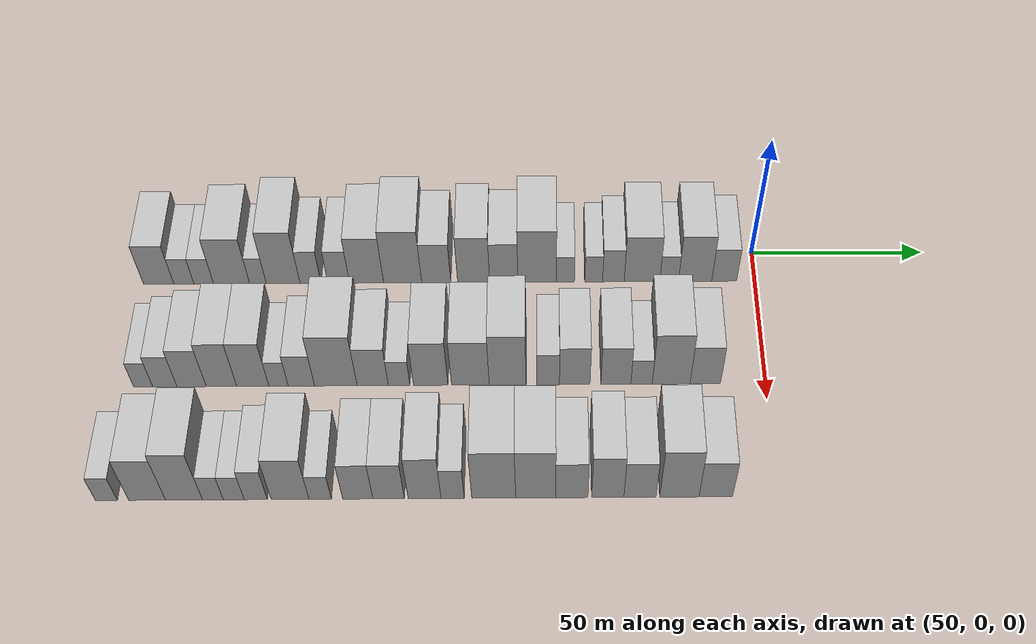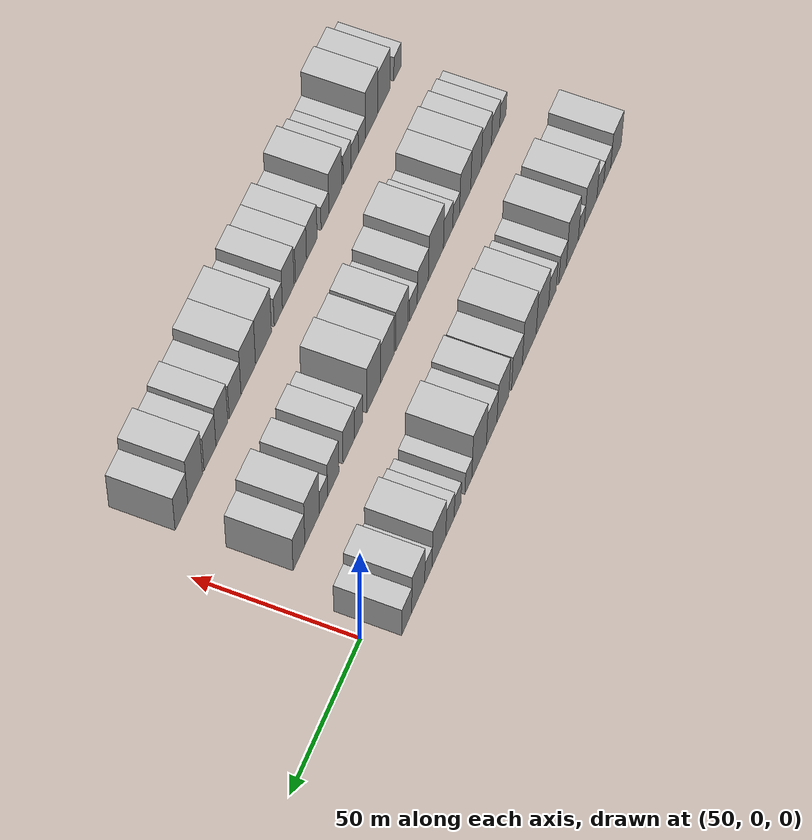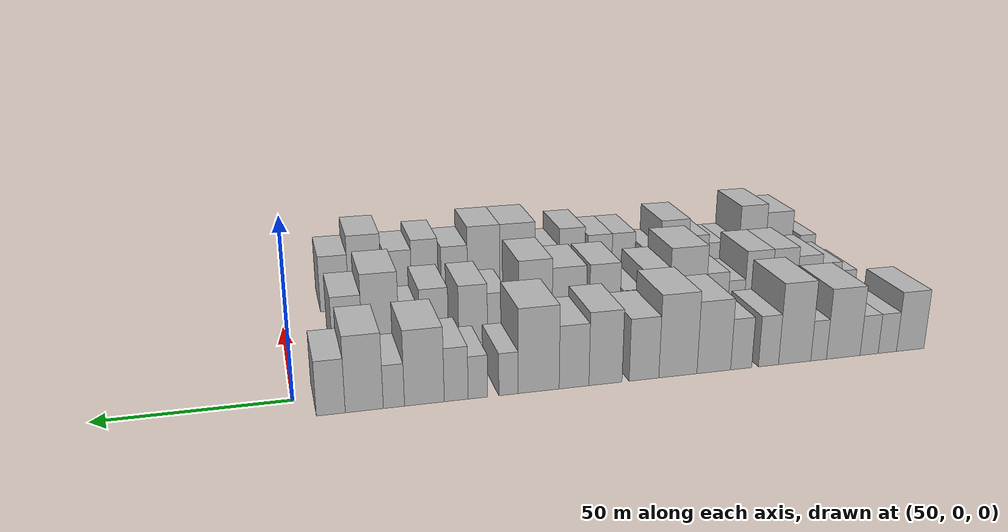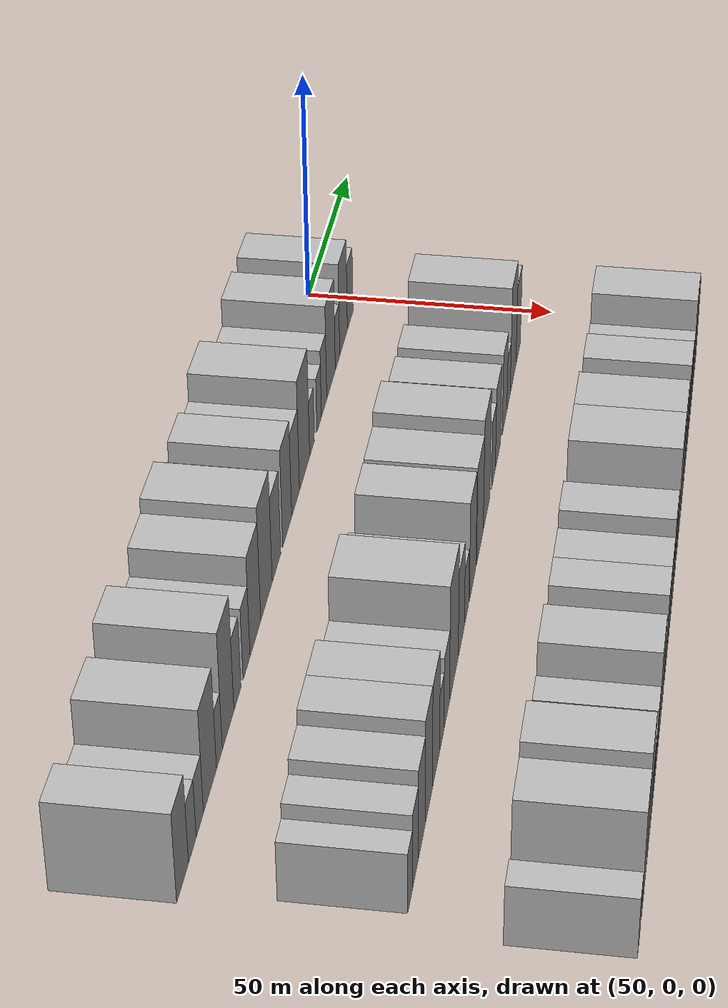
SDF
<sdf version="1.6">
 <world name="default">
  <model name="building_22">
   <static>1</static>
   <pose>50.0000 -173.2719 0 0.000000 0.000000 0.000000</pose>
   <link name="link">
    <pose>0 0 9.00 0 0 0</pose>
    <collision name="collision"><geometry><box><size>20.0000 8.8156 18.0000</size></box></geometry></collision>
    <visual name="visual">
     <cast_shadows>0</cast_shadows>
     <geometry><box><size>20.0000 8.8156 18.0000</size></box></geometry>
     <material>
      <script>
       <uri>model://HANNAS_wall/materials/scripts</uri>
       <uri>model://HANNAS_wall/materials/textures</uri>
       <name>vrc/HANNAS_wall</name>
      </script>
     </material>
    </visual>
   </link>
  </model>
  <model name="building_23">
   <static>1</static>
   <pose>50.0000 -165.9495 0 0.000000 0.000000 0.000000</pose>
   <link name="link">
    <pose>0 0 6.00 0 0 0</pose>
    <collision name="collision"><geometry><box><size>20.0000 5.8291 12.0000</size></box></geometry></collision>
    <visual name="visual">
     <cast_shadows>0</cast_shadows>
     <geometry><box><size>20.0000 5.8291 12.0000</size></box></geometry>
     <material>
      <script>
       <uri>model://HANNAS_wall/materials/scripts</uri>
       <uri>model://HANNAS_wall/materials/textures</uri>
       <name>vrc/HANNAS_wall</name>
      </script>
     </material>
    </visual>
   </link>
  </model>
  <model name="building_24">
   <static>1</static>
   <pose>50.0000 -160.1838 0 0.000000 0.000000 0.000000</pose>
   <link name="link">
    <pose>0 0 6.00 0 0 0</pose>
    <collision name="collision"><geometry><box><size>20.0000 5.7024 12.0000</size></box></geometry></collision>
    <visual name="visual">
     <cast_shadows>0</cast_shadows>
     <geometry><box><size>20.0000 5.7024 12.0000</size></box></geometry>
     <material>
      <script>
       <uri>model://HANNAS_wall/materials/scripts</uri>
       <uri>model://HANNAS_wall/materials/textures</uri>
       <name>vrc/HANNAS_wall</name>
      </script>
     </material>
    </visual>
   </link>
  </model>
  <model name="building_25">
   <static>1</static>
   <pose>50.0000 -152.0896 0 0.000000 0.000000 0.000000</pose>
   <link name="link">
    <pose>0 0 10.50 0 0 0</pose>
    <collision name="collision"><geometry><box><size>20.0000 10.4859 21.0000</size></box></geometry></collision>
    <visual name="visual">
     <cast_shadows>0</cast_shadows>
     <geometry><box><size>20.0000 10.4859 21.0000</size></box></geometry>
     <material>
      <script>
       <uri>model://HANNAS_wall/materials/scripts</uri>
       <uri>model://HANNAS_wall/materials/textures</uri>
       <name>vrc/HANNAS_wall</name>
      </script>
     </material>
    </visual>
   </link>
  </model>
  <model name="building_26">
   <static>1</static>
   <pose>50.0000 -144.4280 0 0.000000 0.000000 0.000000</pose>
   <link name="link">
    <pose>0 0 6.00 0 0 0</pose>
    <collision name="collision"><geometry><box><size>20.0000 4.8373 12.0000</size></box></geometry></collision>
    <visual name="visual">
     <cast_shadows>0</cast_shadows>
     <geometry><box><size>20.0000 4.8373 12.0000</size></box></geometry>
     <material>
      <script>
       <uri>model://HANNAS_wall/materials/scripts</uri>
       <uri>model://HANNAS_wall/materials/textures</uri>
       <name>vrc/HANNAS_wall</name>
      </script>
     </material>
    </visual>
   </link>
  </model>
  <model name="building_27">
   <static>1</static>
   <pose>50.0000 -137.0855 0 0.000000 0.000000 0.000000</pose>
   <link name="link">
    <pose>0 0 12.00 0 0 0</pose>
    <collision name="collision"><geometry><box><size>20.0000 9.8476 24.0000</size></box></geometry></collision>
    <visual name="visual">
     <cast_shadows>0</cast_shadows>
     <geometry><box><size>20.0000 9.8476 24.0000</size></box></geometry>
     <material>
      <script>
       <uri>model://HANNAS_wall/materials/scripts</uri>
       <uri>model://HANNAS_wall/materials/textures</uri>
       <name>vrc/HANNAS_wall</name>
      </script>
     </material>
    </visual>
   </link>
  </model>
  <model name="building_28">
   <static>1</static>
   <pose>50.0000 -129.1241 0 0.000000 0.000000 0.000000</pose>
   <link name="link">
    <pose>0 0 7.50 0 0 0</pose>
    <collision name="collision"><geometry><box><size>20.0000 6.0752 15.0000</size></box></geometry></collision>
    <visual name="visual">
     <cast_shadows>0</cast_shadows>
     <geometry><box><size>20.0000 6.0752 15.0000</size></box></geometry>
     <material>
      <script>
       <uri>model://HANNAS_wall/materials/scripts</uri>
       <uri>model://HANNAS_wall/materials/textures</uri>
       <name>vrc/HANNAS_wall</name>
      </script>
     </material>
    </visual>
   </link>
  </model>
  <model name="building_29">
   <static>1</static>
   <pose>50.0000 -120.9508 0 0.000000 0.000000 0.000000</pose>
   <link name="link">
    <pose>0 0 7.50 0 0 0</pose>
    <collision name="collision"><geometry><box><size>20.0000 6.2715 15.0000</size></box></geometry></collision>
    <visual name="visual">
     <cast_shadows>0</cast_shadows>
     <geometry><box><size>20.0000 6.2715 15.0000</size></box></geometry>
     <material>
      <script>
       <uri>model://HANNAS_wall/materials/scripts</uri>
       <uri>model://HANNAS_wall/materials/textures</uri>
       <name>vrc/HANNAS_wall</name>
      </script>
     </material>
    </visual>
   </link>
  </model>
  <model name="building_30">
   <static>1</static>
   <pose>50.0000 -112.8564 0 0.000000 0.000000 0.000000</pose>
   <link name="link">
    <pose>0 0 10.50 0 0 0</pose>
    <collision name="collision"><geometry><box><size>20.0000 9.9175 21.0000</size></box></geometry></collision>
    <visual name="visual">
     <cast_shadows>0</cast_shadows>
     <geometry><box><size>20.0000 9.9175 21.0000</size></box></geometry>
     <material>
      <script>
       <uri>model://HANNAS_wall/materials/scripts</uri>
       <uri>model://HANNAS_wall/materials/textures</uri>
       <name>vrc/HANNAS_wall</name>
      </script>
     </material>
    </visual>
   </link>
  </model>
  <model name="building_31">
   <static>1</static>
   <pose>50.0000 -102.3716 0 0.000000 0.000000 0.000000</pose>
   <link name="link">
    <pose>0 0 12.00 0 0 0</pose>
    <collision name="collision"><geometry><box><size>20.0000 11.0521 24.0000</size></box></geometry></collision>
    <visual name="visual">
     <cast_shadows>0</cast_shadows>
     <geometry><box><size>20.0000 11.0521 24.0000</size></box></geometry>
     <material>
      <script>
       <uri>model://HANNAS_wall/materials/scripts</uri>
       <uri>model://HANNAS_wall/materials/textures</uri>
       <name>vrc/HANNAS_wall</name>
      </script>
     </material>
    </visual>
   </link>
  </model>
  <model name="building_32">
   <static>1</static>
   <pose>50.0000 -92.6027 0 0.000000 0.000000 0.000000</pose>
   <link name="link">
    <pose>0 0 9.00 0 0 0</pose>
    <collision name="collision"><geometry><box><size>20.0000 8.4857 18.0000</size></box></geometry></collision>
    <visual name="visual">
     <cast_shadows>0</cast_shadows>
     <geometry><box><size>20.0000 8.4857 18.0000</size></box></geometry>
     <material>
      <script>
       <uri>model://HANNAS_wall/materials/scripts</uri>
       <uri>model://HANNAS_wall/materials/textures</uri>
       <name>vrc/HANNAS_wall</name>
      </script>
     </material>
    </visual>
   </link>
  </model>
  <model name="building_33">
   <static>1</static>
   <pose>50.0000 -81.7092 0 0.000000 0.000000 0.000000</pose>
   <link name="link">
    <pose>0 0 10.50 0 0 0</pose>
    <collision name="collision"><geometry><box><size>20.0000 9.3013 21.0000</size></box></geometry></collision>
    <visual name="visual">
     <cast_shadows>0</cast_shadows>
     <geometry><box><size>20.0000 9.3013 21.0000</size></box></geometry>
     <material>
      <script>
       <uri>model://HANNAS_wall/materials/scripts</uri>
       <uri>model://HANNAS_wall/materials/textures</uri>
       <name>vrc/HANNAS_wall</name>
      </script>
     </material>
    </visual>
   </link>
  </model>
  <model name="building_34">
   <static>1</static>
   <pose>50.0000 -72.9314 0 0.000000 0.000000 0.000000</pose>
   <link name="link">
    <pose>0 0 9.00 0 0 0</pose>
    <collision name="collision"><geometry><box><size>20.0000 8.2544 18.0000</size></box></geometry></collision>
    <visual name="visual">
     <cast_shadows>0</cast_shadows>
     <geometry><box><size>20.0000 8.2544 18.0000</size></box></geometry>
     <material>
      <script>
       <uri>model://HANNAS_wall/materials/scripts</uri>
       <uri>model://HANNAS_wall/materials/textures</uri>
       <name>vrc/HANNAS_wall</name>
      </script>
     </material>
    </visual>
   </link>
  </model>
  <model name="building_35">
   <static>1</static>
   <pose>50.0000 -63.2243 0 0.000000 0.000000 0.000000</pose>
   <link name="link">
    <pose>0 0 12.00 0 0 0</pose>
    <collision name="collision"><geometry><box><size>20.0000 11.1598 24.0000</size></box></geometry></collision>
    <visual name="visual">
     <cast_shadows>0</cast_shadows>
     <geometry><box><size>20.0000 11.1598 24.0000</size></box></geometry>
     <material>
      <script>
       <uri>model://HANNAS_wall/materials/scripts</uri>
       <uri>model://HANNAS_wall/materials/textures</uri>
       <name>vrc/HANNAS_wall</name>
      </script>
     </material>
    </visual>
   </link>
  </model>
  <model name="building_36">
   <static>1</static>
   <pose>50.0000 -55.0283 0 0.000000 0.000000 0.000000</pose>
   <link name="link">
    <pose>0 0 6.00 0 0 0</pose>
    <collision name="collision"><geometry><box><size>20.0000 5.2321 12.0000</size></box></geometry></collision>
    <visual name="visual">
     <cast_shadows>0</cast_shadows>
     <geometry><box><size>20.0000 5.2321 12.0000</size></box></geometry>
     <material>
      <script>
       <uri>model://HANNAS_wall/materials/scripts</uri>
       <uri>model://HANNAS_wall/materials/textures</uri>
       <name>vrc/HANNAS_wall</name>
      </script>
     </material>
    </visual>
   </link>
  </model>
  <model name="building_37">
   <static>1</static>
   <pose>50.0000 -46.8192 0 0.000000 0.000000 0.000000</pose>
   <link name="link">
    <pose>0 0 6.00 0 0 0</pose>
    <collision name="collision"><geometry><box><size>20.0000 5.1861 12.0000</size></box></geometry></collision>
    <visual name="visual">
     <cast_shadows>0</cast_shadows>
     <geometry><box><size>20.0000 5.1861 12.0000</size></box></geometry>
     <material>
      <script>
       <uri>model://HANNAS_wall/materials/scripts</uri>
       <uri>model://HANNAS_wall/materials/textures</uri>
       <name>vrc/HANNAS_wall</name>
      </script>
     </material>
    </visual>
   </link>
  </model>
  <model name="building_38">
   <static>1</static>
   <pose>50.0000 -41.0748 0 0.000000 0.000000 0.000000</pose>
   <link name="link">
    <pose>0 0 7.50 0 0 0</pose>
    <collision name="collision"><geometry><box><size>20.0000 6.3028 15.0000</size></box></geometry></collision>
    <visual name="visual">
     <cast_shadows>0</cast_shadows>
     <geometry><box><size>20.0000 6.3028 15.0000</size></box></geometry>
     <material>
      <script>
       <uri>model://HANNAS_wall/materials/scripts</uri>
       <uri>model://HANNAS_wall/materials/textures</uri>
       <name>vrc/HANNAS_wall</name>
      </script>
     </material>
    </visual>
   </link>
  </model>
  <model name="building_39">
   <static>1</static>
   <pose>50.0000 -32.7464 0 0.000000 0.000000 0.000000</pose>
   <link name="link">
    <pose>0 0 10.50 0 0 0</pose>
    <collision name="collision"><geometry><box><size>20.0000 10.3540 21.0000</size></box></geometry></collision>
    <visual name="visual">
     <cast_shadows>0</cast_shadows>
     <geometry><box><size>20.0000 10.3540 21.0000</size></box></geometry>
     <material>
      <script>
       <uri>model://HANNAS_wall/materials/scripts</uri>
       <uri>model://HANNAS_wall/materials/textures</uri>
       <name>vrc/HANNAS_wall</name>
      </script>
     </material>
    </visual>
   </link>
  </model>
  <model name="building_40">
   <static>1</static>
   <pose>50.0000 -24.8430 0 0.000000 0.000000 0.000000</pose>
   <link name="link">
    <pose>0 0 6.00 0 0 0</pose>
    <collision name="collision"><geometry><box><size>20.0000 5.4528 12.0000</size></box></geometry></collision>
    <visual name="visual">
     <cast_shadows>0</cast_shadows>
     <geometry><box><size>20.0000 5.4528 12.0000</size></box></geometry>
     <material>
      <script>
       <uri>model://HANNAS_wall/materials/scripts</uri>
       <uri>model://HANNAS_wall/materials/textures</uri>
       <name>vrc/HANNAS_wall</name>
      </script>
     </material>
    </visual>
   </link>
  </model>
  <model name="building_41">
   <static>1</static>
   <pose>50.0000 -17.2844 0 0.000000 0.000000 0.000000</pose>
   <link name="link">
    <pose>0 0 10.50 0 0 0</pose>
    <collision name="collision"><geometry><box><size>20.0000 9.6644 21.0000</size></box></geometry></collision>
    <visual name="visual">
     <cast_shadows>0</cast_shadows>
     <geometry><box><size>20.0000 9.6644 21.0000</size></box></geometry>
     <material>
      <script>
       <uri>model://HANNAS_wall/materials/scripts</uri>
       <uri>model://HANNAS_wall/materials/textures</uri>
       <name>vrc/HANNAS_wall</name>
      </script>
     </material>
    </visual>
   </link>
  </model>
  <model name="building_42">
   <static>1</static>
   <pose>50.0000 -8.8201 0 0.000000 0.000000 0.000000</pose>
   <link name="link">
    <pose>0 0 7.50 0 0 0</pose>
    <collision name="collision"><geometry><box><size>20.0000 7.2641 15.0000</size></box></geometry></collision>
    <visual name="visual">
     <cast_shadows>0</cast_shadows>
     <geometry><box><size>20.0000 7.2641 15.0000</size></box></geometry>
     <material>
      <script>
       <uri>model://HANNAS_wall/materials/scripts</uri>
       <uri>model://HANNAS_wall/materials/textures</uri>
       <name>vrc/HANNAS_wall</name>
      </script>
     </material>
    </visual>
   </link>
  </model>
  <model name="building_104">
   <static>1</static>
   <pose>85.0000 -172.4452 0 0.000000 0.000000 0.000000</pose>
   <link name="link">
    <pose>0 0 6.00 0 0 0</pose>
    <collision name="collision"><geometry><box><size>20.0000 5.2617 12.0000</size></box></geometry></collision>
    <visual name="visual">
     <cast_shadows>0</cast_shadows>
     <geometry><box><size>20.0000 5.2617 12.0000</size></box></geometry>
     <material>
      <script>
       <uri>model://HANNAS_wall/materials/scripts</uri>
       <uri>model://HANNAS_wall/materials/textures</uri>
       <name>vrc/HANNAS_wall</name>
      </script>
     </material>
    </visual>
   </link>
  </model>
  <model name="building_105">
   <static>1</static>
   <pose>85.0000 -166.4679 0 0.000000 0.000000 0.000000</pose>
   <link name="link">
    <pose>0 0 7.50 0 0 0</pose>
    <collision name="collision"><geometry><box><size>20.0000 6.6930 15.0000</size></box></geometry></collision>
    <visual name="visual">
     <cast_shadows>0</cast_shadows>
     <geometry><box><size>20.0000 6.6930 15.0000</size></box></geometry>
     <material>
      <script>
       <uri>model://HANNAS_wall/materials/scripts</uri>
       <uri>model://HANNAS_wall/materials/textures</uri>
       <name>vrc/HANNAS_wall</name>
      </script>
     </material>
    </visual>
   </link>
  </model>
  <model name="building_106">
   <static>1</static>
   <pose>85.0000 -159.0686 0 0.000000 0.000000 0.000000</pose>
   <link name="link">
    <pose>0 0 9.00 0 0 0</pose>
    <collision name="collision"><geometry><box><size>20.0000 8.1057 18.0000</size></box></geometry></collision>
    <visual name="visual">
     <cast_shadows>0</cast_shadows>
     <geometry><box><size>20.0000 8.1057 18.0000</size></box></geometry>
     <material>
      <script>
       <uri>model://HANNAS_wall/materials/scripts</uri>
       <uri>model://HANNAS_wall/materials/textures</uri>
       <name>vrc/HANNAS_wall</name>
      </script>
     </material>
    </visual>
   </link>
  </model>
  <model name="building_107">
   <static>1</static>
   <pose>85.0000 -150.7750 0 0.000000 0.000000 0.000000</pose>
   <link name="link">
    <pose>0 0 10.50 0 0 0</pose>
    <collision name="collision"><geometry><box><size>20.0000 8.4814 21.0000</size></box></geometry></collision>
    <visual name="visual">
     <cast_shadows>0</cast_shadows>
     <geometry><box><size>20.0000 8.4814 21.0000</size></box></geometry>
     <material>
      <script>
       <uri>model://HANNAS_wall/materials/scripts</uri>
       <uri>model://HANNAS_wall/materials/textures</uri>
       <name>vrc/HANNAS_wall</name>
      </script>
     </material>
    </visual>
   </link>
  </model>
  <model name="building_108">
   <static>1</static>
   <pose>85.0000 -142.0989 0 0.000000 0.000000 0.000000</pose>
   <link name="link">
    <pose>0 0 10.50 0 0 0</pose>
    <collision name="collision"><geometry><box><size>20.0000 8.8708 21.0000</size></box></geometry></collision>
    <visual name="visual">
     <cast_shadows>0</cast_shadows>
     <geometry><box><size>20.0000 8.8708 21.0000</size></box></geometry>
     <material>
      <script>
       <uri>model://HANNAS_wall/materials/scripts</uri>
       <uri>model://HANNAS_wall/materials/textures</uri>
       <name>vrc/HANNAS_wall</name>
      </script>
     </material>
    </visual>
   </link>
  </model>
  <model name="building_109">
   <static>1</static>
   <pose>85.0000 -134.9802 0 0.000000 0.000000 0.000000</pose>
   <link name="link">
    <pose>0 0 6.00 0 0 0</pose>
    <collision name="collision"><geometry><box><size>20.0000 5.3665 12.0000</size></box></geometry></collision>
    <visual name="visual">
     <cast_shadows>0</cast_shadows>
     <geometry><box><size>20.0000 5.3665 12.0000</size></box></geometry>
     <material>
      <script>
       <uri>model://HANNAS_wall/materials/scripts</uri>
       <uri>model://HANNAS_wall/materials/textures</uri>
       <name>vrc/HANNAS_wall</name>
      </script>
     </material>
    </visual>
   </link>
  </model>
  <model name="building_110">
   <static>1</static>
   <pose>85.0000 -128.6485 0 0.000000 0.000000 0.000000</pose>
   <link name="link">
    <pose>0 0 7.50 0 0 0</pose>
    <collision name="collision"><geometry><box><size>20.0000 7.2971 15.0000</size></box></geometry></collision>
    <visual name="visual">
     <cast_shadows>0</cast_shadows>
     <geometry><box><size>20.0000 7.2971 15.0000</size></box></geometry>
     <material>
      <script>
       <uri>model://HANNAS_wall/materials/scripts</uri>
       <uri>model://HANNAS_wall/materials/textures</uri>
       <name>vrc/HANNAS_wall</name>
      </script>
     </material>
    </visual>
   </link>
  </model>
  <model name="building_111">
   <static>1</static>
   <pose>85.0000 -119.1003 0 0.000000 0.000000 0.000000</pose>
   <link name="link">
    <pose>0 0 12.00 0 0 0</pose>
    <collision name="collision"><geometry><box><size>20.0000 11.7992 24.0000</size></box></geometry></collision>
    <visual name="visual">
     <cast_shadows>0</cast_shadows>
     <geometry><box><size>20.0000 11.7992 24.0000</size></box></geometry>
     <material>
      <script>
       <uri>model://HANNAS_wall/materials/scripts</uri>
       <uri>model://HANNAS_wall/materials/textures</uri>
       <name>vrc/HANNAS_wall</name>
      </script>
     </material>
    </visual>
   </link>
  </model>
  <model name="building_112">
   <static>1</static>
   <pose>85.0000 -108.8827 0 0.000000 0.000000 0.000000</pose>
   <link name="link">
    <pose>0 0 9.00 0 0 0</pose>
    <collision name="collision"><geometry><box><size>20.0000 8.6362 18.0000</size></box></geometry></collision>
    <visual name="visual">
     <cast_shadows>0</cast_shadows>
     <geometry><box><size>20.0000 8.6362 18.0000</size></box></geometry>
     <material>
      <script>
       <uri>model://HANNAS_wall/materials/scripts</uri>
       <uri>model://HANNAS_wall/materials/textures</uri>
       <name>vrc/HANNAS_wall</name>
      </script>
     </material>
    </visual>
   </link>
  </model>
  <model name="building_113">
   <static>1</static>
   <pose>85.0000 -101.5740 0 0.000000 0.000000 0.000000</pose>
   <link name="link">
    <pose>0 0 6.00 0 0 0</pose>
    <collision name="collision"><geometry><box><size>20.0000 5.9811 12.0000</size></box></geometry></collision>
    <visual name="visual">
     <cast_shadows>0</cast_shadows>
     <geometry><box><size>20.0000 5.9811 12.0000</size></box></geometry>
     <material>
      <script>
       <uri>model://HANNAS_wall/materials/scripts</uri>
       <uri>model://HANNAS_wall/materials/textures</uri>
       <name>vrc/HANNAS_wall</name>
      </script>
     </material>
    </visual>
   </link>
  </model>
  <model name="building_114">
   <static>1</static>
   <pose>85.0000 -92.8134 0 0.000000 0.000000 0.000000</pose>
   <link name="link">
    <pose>0 0 10.50 0 0 0</pose>
    <collision name="collision"><geometry><box><size>20.0000 9.5402 21.0000</size></box></geometry></collision>
    <visual name="visual">
     <cast_shadows>0</cast_shadows>
     <geometry><box><size>20.0000 9.5402 21.0000</size></box></geometry>
     <material>
      <script>
       <uri>model://HANNAS_wall/materials/scripts</uri>
       <uri>model://HANNAS_wall/materials/textures</uri>
       <name>vrc/HANNAS_wall</name>
      </script>
     </material>
    </visual>
   </link>
  </model>
  <model name="building_115">
   <static>1</static>
   <pose>85.0000 -81.8320 0 0.000000 0.000000 0.000000</pose>
   <link name="link">
    <pose>0 0 10.50 0 0 0</pose>
    <collision name="collision"><geometry><box><size>20.0000 10.4225 21.0000</size></box></geometry></collision>
    <visual name="visual">
     <cast_shadows>0</cast_shadows>
     <geometry><box><size>20.0000 10.4225 21.0000</size></box></geometry>
     <material>
      <script>
       <uri>model://HANNAS_wall/materials/scripts</uri>
       <uri>model://HANNAS_wall/materials/textures</uri>
       <name>vrc/HANNAS_wall</name>
      </script>
     </material>
    </visual>
   </link>
  </model>
  <model name="building_116">
   <static>1</static>
   <pose>85.0000 -71.5048 0 0.000000 0.000000 0.000000</pose>
   <link name="link">
    <pose>0 0 12.00 0 0 0</pose>
    <collision name="collision"><geometry><box><size>20.0000 10.2318 24.0000</size></box></geometry></collision>
    <visual name="visual">
     <cast_shadows>0</cast_shadows>
     <geometry><box><size>20.0000 10.2318 24.0000</size></box></geometry>
     <material>
      <script>
       <uri>model://HANNAS_wall/materials/scripts</uri>
       <uri>model://HANNAS_wall/materials/textures</uri>
       <name>vrc/HANNAS_wall</name>
      </script>
     </material>
    </visual>
   </link>
  </model>
  <model name="building_117">
   <static>1</static>
   <pose>85.0000 -60.2751 0 0.000000 0.000000 0.000000</pose>
   <link name="link">
    <pose>0 0 7.50 0 0 0</pose>
    <collision name="collision"><geometry><box><size>20.0000 6.2275 15.0000</size></box></geometry></collision>
    <visual name="visual">
     <cast_shadows>0</cast_shadows>
     <geometry><box><size>20.0000 6.2275 15.0000</size></box></geometry>
     <material>
      <script>
       <uri>model://HANNAS_wall/materials/scripts</uri>
       <uri>model://HANNAS_wall/materials/textures</uri>
       <name>vrc/HANNAS_wall</name>
      </script>
     </material>
    </visual>
   </link>
  </model>
  <model name="building_118">
   <static>1</static>
   <pose>85.0000 -52.9163 0 0.000000 0.000000 0.000000</pose>
   <link name="link">
    <pose>0 0 9.00 0 0 0</pose>
    <collision name="collision"><geometry><box><size>20.0000 8.4901 18.0000</size></box></geometry></collision>
    <visual name="visual">
     <cast_shadows>0</cast_shadows>
     <geometry><box><size>20.0000 8.4901 18.0000</size></box></geometry>
     <material>
      <script>
       <uri>model://HANNAS_wall/materials/scripts</uri>
       <uri>model://HANNAS_wall/materials/textures</uri>
       <name>vrc/HANNAS_wall</name>
      </script>
     </material>
    </visual>
   </link>
  </model>
  <model name="building_119">
   <static>1</static>
   <pose>85.0000 -41.5127 0 0.000000 0.000000 0.000000</pose>
   <link name="link">
    <pose>0 0 9.00 0 0 0</pose>
    <collision name="collision"><geometry><box><size>20.0000 8.3172 18.0000</size></box></geometry></collision>
    <visual name="visual">
     <cast_shadows>0</cast_shadows>
     <geometry><box><size>20.0000 8.3172 18.0000</size></box></geometry>
     <material>
      <script>
       <uri>model://HANNAS_wall/materials/scripts</uri>
       <uri>model://HANNAS_wall/materials/textures</uri>
       <name>vrc/HANNAS_wall</name>
      </script>
     </material>
    </visual>
   </link>
  </model>
  <model name="building_120">
   <static>1</static>
   <pose>85.0000 -34.3847 0 0.000000 0.000000 0.000000</pose>
   <link name="link">
    <pose>0 0 6.00 0 0 0</pose>
    <collision name="collision"><geometry><box><size>20.0000 5.9388 12.0000</size></box></geometry></collision>
    <visual name="visual">
     <cast_shadows>0</cast_shadows>
     <geometry><box><size>20.0000 5.9388 12.0000</size></box></geometry>
     <material>
      <script>
       <uri>model://HANNAS_wall/materials/scripts</uri>
       <uri>model://HANNAS_wall/materials/textures</uri>
       <name>vrc/HANNAS_wall</name>
      </script>
     </material>
    </visual>
   </link>
  </model>
  <model name="building_121">
   <static>1</static>
   <pose>85.0000 -26.1799 0 0.000000 0.000000 0.000000</pose>
   <link name="link">
    <pose>0 0 12.00 0 0 0</pose>
    <collision name="collision"><geometry><box><size>20.0000 10.4708 24.0000</size></box></geometry></collision>
    <visual name="visual">
     <cast_shadows>0</cast_shadows>
     <geometry><box><size>20.0000 10.4708 24.0000</size></box></geometry>
     <material>
      <script>
       <uri>model://HANNAS_wall/materials/scripts</uri>
       <uri>model://HANNAS_wall/materials/textures</uri>
       <name>vrc/HANNAS_wall</name>
      </script>
     </material>
    </visual>
   </link>
  </model>
  <model name="building_122">
   <static>1</static>
   <pose>85.0000 -16.7093 0 0.000000 0.000000 0.000000</pose>
   <link name="link">
    <pose>0 0 9.00 0 0 0</pose>
    <collision name="collision"><geometry><box><size>20.0000 8.4705 18.0000</size></box></geometry></collision>
    <visual name="visual">
     <cast_shadows>0</cast_shadows>
     <geometry><box><size>20.0000 8.4705 18.0000</size></box></geometry>
     <material>
      <script>
       <uri>model://HANNAS_wall/materials/scripts</uri>
       <uri>model://HANNAS_wall/materials/textures</uri>
       <name>vrc/HANNAS_wall</name>
      </script>
     </material>
    </visual>
   </link>
  </model>
  <model name="building_179">
   <static>1</static>
   <pose>120.0000 -176.8364 0 0.000000 0.000000 0.000000</pose>
   <link name="link">
    <pose>0 0 6.00 0 0 0</pose>
    <collision name="collision"><geometry><box><size>20.0000 5.7710 12.0000</size></box></geometry></collision>
    <visual name="visual">
     <cast_shadows>0</cast_shadows>
     <geometry><box><size>20.0000 5.7710 12.0000</size></box></geometry>
     <material>
      <script>
       <uri>model://HANNAS_wall/materials/scripts</uri>
       <uri>model://HANNAS_wall/materials/textures</uri>
       <name>vrc/HANNAS_wall</name>
      </script>
     </material>
    </visual>
   </link>
  </model>
  <model name="building_180">
   <static>1</static>
   <pose>120.0000 -166.1045 0 0.000000 0.000000 0.000000</pose>
   <link name="link">
    <pose>0 0 10.50 0 0 0</pose>
    <collision name="collision"><geometry><box><size>20.0000 9.6927 21.0000</size></box></geometry></collision>
    <visual name="visual">
     <cast_shadows>0</cast_shadows>
     <geometry><box><size>20.0000 9.6927 21.0000</size></box></geometry>
     <material>
      <script>
       <uri>model://HANNAS_wall/materials/scripts</uri>
       <uri>model://HANNAS_wall/materials/textures</uri>
       <name>vrc/HANNAS_wall</name>
      </script>
     </material>
    </visual>
   </link>
  </model>
  <model name="building_181">
   <static>1</static>
   <pose>120.0000 -156.4012 0 0.000000 0.000000 0.000000</pose>
   <link name="link">
    <pose>0 0 12.00 0 0 0</pose>
    <collision name="collision"><geometry><box><size>20.0000 9.7140 24.0000</size></box></geometry></collision>
    <visual name="visual">
     <cast_shadows>0</cast_shadows>
     <geometry><box><size>20.0000 9.7140 24.0000</size></box></geometry>
     <material>
      <script>
       <uri>model://HANNAS_wall/materials/scripts</uri>
       <uri>model://HANNAS_wall/materials/textures</uri>
       <name>vrc/HANNAS_wall</name>
      </script>
     </material>
    </visual>
   </link>
  </model>
  <model name="building_182">
   <static>1</static>
   <pose>120.0000 -148.8030 0 0.000000 0.000000 0.000000</pose>
   <link name="link">
    <pose>0 0 6.00 0 0 0</pose>
    <collision name="collision"><geometry><box><size>20.0000 5.4824 12.0000</size></box></geometry></collision>
    <visual name="visual">
     <cast_shadows>0</cast_shadows>
     <geometry><box><size>20.0000 5.4824 12.0000</size></box></geometry>
     <material>
      <script>
       <uri>model://HANNAS_wall/materials/scripts</uri>
       <uri>model://HANNAS_wall/materials/textures</uri>
       <name>vrc/HANNAS_wall</name>
      </script>
     </material>
    </visual>
   </link>
  </model>
  <model name="building_183">
   <static>1</static>
   <pose>120.0000 -143.3303 0 0.000000 0.000000 0.000000</pose>
   <link name="link">
    <pose>0 0 6.00 0 0 0</pose>
    <collision name="collision"><geometry><box><size>20.0000 5.4630 12.0000</size></box></geometry></collision>
    <visual name="visual">
     <cast_shadows>0</cast_shadows>
     <geometry><box><size>20.0000 5.4630 12.0000</size></box></geometry>
     <material>
      <script>
       <uri>model://HANNAS_wall/materials/scripts</uri>
       <uri>model://HANNAS_wall/materials/textures</uri>
       <name>vrc/HANNAS_wall</name>
      </script>
     </material>
    </visual>
   </link>
  </model>
  <model name="building_184">
   <static>1</static>
   <pose>120.0000 -137.5385 0 0.000000 0.000000 0.000000</pose>
   <link name="link">
    <pose>0 0 7.50 0 0 0</pose>
    <collision name="collision"><geometry><box><size>20.0000 6.1206 15.0000</size></box></geometry></collision>
    <visual name="visual">
     <cast_shadows>0</cast_shadows>
     <geometry><box><size>20.0000 6.1206 15.0000</size></box></geometry>
     <material>
      <script>
       <uri>model://HANNAS_wall/materials/scripts</uri>
       <uri>model://HANNAS_wall/materials/textures</uri>
       <name>vrc/HANNAS_wall</name>
      </script>
     </material>
    </visual>
   </link>
  </model>
  <model name="building_185">
   <static>1</static>
   <pose>120.0000 -128.4988 0 0.000000 0.000000 0.000000</pose>
   <link name="link">
    <pose>0 0 10.50 0 0 0</pose>
    <collision name="collision"><geometry><box><size>20.0000 9.9589 21.0000</size></box></geometry></collision>
    <visual name="visual">
     <cast_shadows>0</cast_shadows>
     <geometry><box><size>20.0000 9.9589 21.0000</size></box></geometry>
     <material>
      <script>
       <uri>model://HANNAS_wall/materials/scripts</uri>
       <uri>model://HANNAS_wall/materials/textures</uri>
       <name>vrc/HANNAS_wall</name>
      </script>
     </material>
    </visual>
   </link>
  </model>
  <model name="building_186">
   <static>1</static>
   <pose>120.0000 -120.5695 0 0.000000 0.000000 0.000000</pose>
   <link name="link">
    <pose>0 0 6.00 0 0 0</pose>
    <collision name="collision"><geometry><box><size>20.0000 5.8997 12.0000</size></box></geometry></collision>
    <visual name="visual">
     <cast_shadows>0</cast_shadows>
     <geometry><box><size>20.0000 5.8997 12.0000</size></box></geometry>
     <material>
      <script>
       <uri>model://HANNAS_wall/materials/scripts</uri>
       <uri>model://HANNAS_wall/materials/textures</uri>
       <name>vrc/HANNAS_wall</name>
      </script>
     </material>
    </visual>
   </link>
  </model>
  <model name="building_187">
   <static>1</static>
   <pose>120.0000 -110.6464 0 0.000000 0.000000 0.000000</pose>
   <link name="link">
    <pose>0 0 9.00 0 0 0</pose>
    <collision name="collision"><geometry><box><size>20.0000 7.9466 18.0000</size></box></geometry></collision>
    <visual name="visual">
     <cast_shadows>0</cast_shadows>
     <geometry><box><size>20.0000 7.9466 18.0000</size></box></geometry>
     <material>
      <script>
       <uri>model://HANNAS_wall/materials/scripts</uri>
       <uri>model://HANNAS_wall/materials/textures</uri>
       <name>vrc/HANNAS_wall</name>
      </script>
     </material>
    </visual>
   </link>
  </model>
  <model name="building_188">
   <static>1</static>
   <pose>120.0000 -102.5305 0 0.000000 0.000000 0.000000</pose>
   <link name="link">
    <pose>0 0 9.00 0 0 0</pose>
    <collision name="collision"><geometry><box><size>20.0000 8.2852 18.0000</size></box></geometry></collision>
    <visual name="visual">
     <cast_shadows>0</cast_shadows>
     <geometry><box><size>20.0000 8.2852 18.0000</size></box></geometry>
     <material>
      <script>
       <uri>model://HANNAS_wall/materials/scripts</uri>
       <uri>model://HANNAS_wall/materials/textures</uri>
       <name>vrc/HANNAS_wall</name>
      </script>
     </material>
    </visual>
   </link>
  </model>
  <model name="building_189">
   <static>1</static>
   <pose>120.0000 -93.0682 0 0.000000 0.000000 0.000000</pose>
   <link name="link">
    <pose>0 0 10.50 0 0 0</pose>
    <collision name="collision"><geometry><box><size>20.0000 8.6393 21.0000</size></box></geometry></collision>
    <visual name="visual">
     <cast_shadows>0</cast_shadows>
     <geometry><box><size>20.0000 8.6393 21.0000</size></box></geometry>
     <material>
      <script>
       <uri>model://HANNAS_wall/materials/scripts</uri>
       <uri>model://HANNAS_wall/materials/textures</uri>
       <name>vrc/HANNAS_wall</name>
      </script>
     </material>
    </visual>
   </link>
  </model>
  <model name="building_190">
   <static>1</static>
   <pose>120.0000 -85.6921 0 0.000000 0.000000 0.000000</pose>
   <link name="link">
    <pose>0 0 7.50 0 0 0</pose>
    <collision name="collision"><geometry><box><size>20.0000 6.1129 15.0000</size></box></geometry></collision>
    <visual name="visual">
     <cast_shadows>0</cast_shadows>
     <geometry><box><size>20.0000 6.1129 15.0000</size></box></geometry>
     <material>
      <script>
       <uri>model://HANNAS_wall/materials/scripts</uri>
       <uri>model://HANNAS_wall/materials/textures</uri>
       <name>vrc/HANNAS_wall</name>
      </script>
     </material>
    </visual>
   </link>
  </model>
  <model name="building_191">
   <static>1</static>
   <pose>120.0000 -74.8309 0 0.000000 0.000000 0.000000</pose>
   <link name="link">
    <pose>0 0 12.00 0 0 0</pose>
    <collision name="collision"><geometry><box><size>20.0000 11.6096 24.0000</size></box></geometry></collision>
    <visual name="visual">
     <cast_shadows>0</cast_shadows>
     <geometry><box><size>20.0000 11.6096 24.0000</size></box></geometry>
     <material>
      <script>
       <uri>model://HANNAS_wall/materials/scripts</uri>
       <uri>model://HANNAS_wall/materials/textures</uri>
       <name>vrc/HANNAS_wall</name>
      </script>
     </material>
    </visual>
   </link>
  </model>
  <model name="building_192">
   <static>1</static>
   <pose>120.0000 -63.7573 0 0.000000 0.000000 0.000000</pose>
   <link name="link">
    <pose>0 0 12.00 0 0 0</pose>
    <collision name="collision"><geometry><box><size>20.0000 10.5377 24.0000</size></box></geometry></collision>
    <visual name="visual">
     <cast_shadows>0</cast_shadows>
     <geometry><box><size>20.0000 10.5377 24.0000</size></box></geometry>
     <material>
      <script>
       <uri>model://HANNAS_wall/materials/scripts</uri>
       <uri>model://HANNAS_wall/materials/textures</uri>
       <name>vrc/HANNAS_wall</name>
      </script>
     </material>
    </visual>
   </link>
  </model>
  <model name="building_193">
   <static>1</static>
   <pose>120.0000 -54.2577 0 0.000000 0.000000 0.000000</pose>
   <link name="link">
    <pose>0 0 9.00 0 0 0</pose>
    <collision name="collision"><geometry><box><size>20.0000 8.4615 18.0000</size></box></geometry></collision>
    <visual name="visual">
     <cast_shadows>0</cast_shadows>
     <geometry><box><size>20.0000 8.4615 18.0000</size></box></geometry>
     <material>
      <script>
       <uri>model://HANNAS_wall/materials/scripts</uri>
       <uri>model://HANNAS_wall/materials/textures</uri>
       <name>vrc/HANNAS_wall</name>
      </script>
     </material>
    </visual>
   </link>
  </model>
  <model name="building_194">
   <static>1</static>
   <pose>120.0000 -44.7821 0 0.000000 0.000000 0.000000</pose>
   <link name="link">
    <pose>0 0 10.50 0 0 0</pose>
    <collision name="collision"><geometry><box><size>20.0000 8.4898 21.0000</size></box></geometry></collision>
    <visual name="visual">
     <cast_shadows>0</cast_shadows>
     <geometry><box><size>20.0000 8.4898 21.0000</size></box></geometry>
     <material>
      <script>
       <uri>model://HANNAS_wall/materials/scripts</uri>
       <uri>model://HANNAS_wall/materials/textures</uri>
       <name>vrc/HANNAS_wall</name>
      </script>
     </material>
    </visual>
   </link>
  </model>
  <model name="building_195">
   <static>1</static>
   <pose>120.0000 -36.3009 0 0.000000 0.000000 0.000000</pose>
   <link name="link">
    <pose>0 0 9.00 0 0 0</pose>
    <collision name="collision"><geometry><box><size>20.0000 8.4726 18.0000</size></box></geometry></collision>
    <visual name="visual">
     <cast_shadows>0</cast_shadows>
     <geometry><box><size>20.0000 8.4726 18.0000</size></box></geometry>
     <material>
      <script>
       <uri>model://HANNAS_wall/materials/scripts</uri>
       <uri>model://HANNAS_wall/materials/textures</uri>
       <name>vrc/HANNAS_wall</name>
      </script>
     </material>
    </visual>
   </link>
  </model>
  <model name="building_196">
   <static>1</static>
   <pose>120.0000 -25.8952 0 0.000000 0.000000 0.000000</pose>
   <link name="link">
    <pose>0 0 12.00 0 0 0</pose>
    <collision name="collision"><geometry><box><size>20.0000 10.3387 24.0000</size></box></geometry></collision>
    <visual name="visual">
     <cast_shadows>0</cast_shadows>
     <geometry><box><size>20.0000 10.3387 24.0000</size></box></geometry>
     <material>
      <script>
       <uri>model://HANNAS_wall/materials/scripts</uri>
       <uri>model://HANNAS_wall/materials/textures</uri>
       <name>vrc/HANNAS_wall</name>
      </script>
     </material>
    </visual>
   </link>
  </model>
  <model name="building_197">
   <static>1</static>
   <pose>120.0000 -16.2837 0 0.000000 0.000000 0.000000</pose>
   <link name="link">
    <pose>0 0 9.00 0 0 0</pose>
    <collision name="collision"><geometry><box><size>20.0000 8.8845 18.0000</size></box></geometry></collision>
    <visual name="visual">
     <cast_shadows>0</cast_shadows>
     <geometry><box><size>20.0000 8.8845 18.0000</size></box></geometry>
     <material>
      <script>
       <uri>model://HANNAS_wall/materials/scripts</uri>
       <uri>model://HANNAS_wall/materials/textures</uri>
       <name>vrc/HANNAS_wall</name>
      </script>
     </material>
    </visual>
   </link>
  </model>
 </world>
</sdf>
